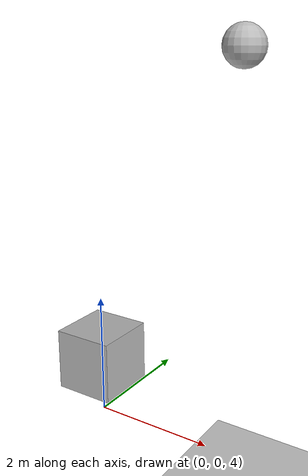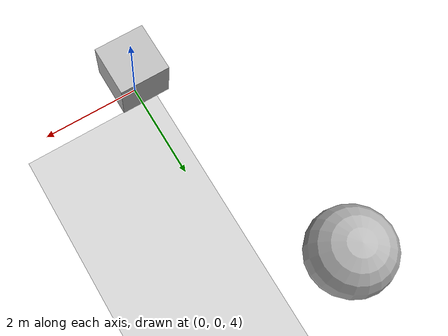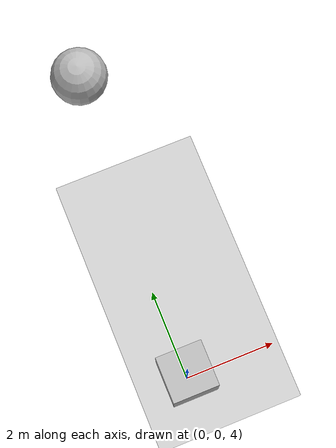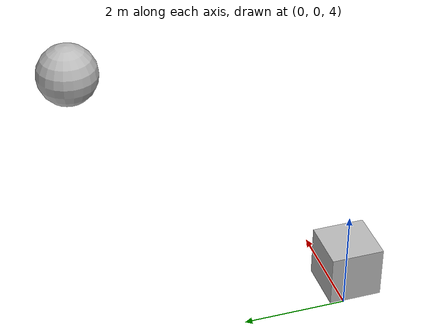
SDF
<?xml version="1.0"?>
<sdf version="1.4">
  <world name="default">
    <include>
      <uri>model://ground_plane</uri>
    </include>

    <include>
      <uri>model://sun</uri>
    </include>

    <model name="box">
      <pose> 0 0 5 0 0 0 </pose>
      <link name="box_link">
        <collision name="box_collisions">
          <geometry>
            <box>
              <size> 1 1 1 </size>
            </box>
          </geometry>
        </collision>
        <visual name="box_visual">
          <geometry>
            <box>
              <size> 1 1 1 </size>
            </box>
          </geometry>
        </visual>
        <audio_generator />
      </link>
    </model>

    <model name="sphere">
      <pose> 0 5 10 0 0 0 </pose>
      <link name="sphere_link">
        <collision name="sphere_collisions">
          <geometry>
            <sphere>
              <radius> 0.5 </radius>
            </sphere>
          </geometry>
        </collision>
        <visual name="sphere_visual">
          <geometry>
            <sphere>
              <radius> 0.5 </radius>
            </sphere>
          </geometry>
        </visual>
        <audio_listener>
          <sofa>file://media/hrtf/hrtf.sofa</sofa>
        </audio_listener>
      </link>
    </model>

    <plugin name="ExportWorldPlugin" filename="libExportWorldPlugin.so"/>
  </world>
</sdf>
